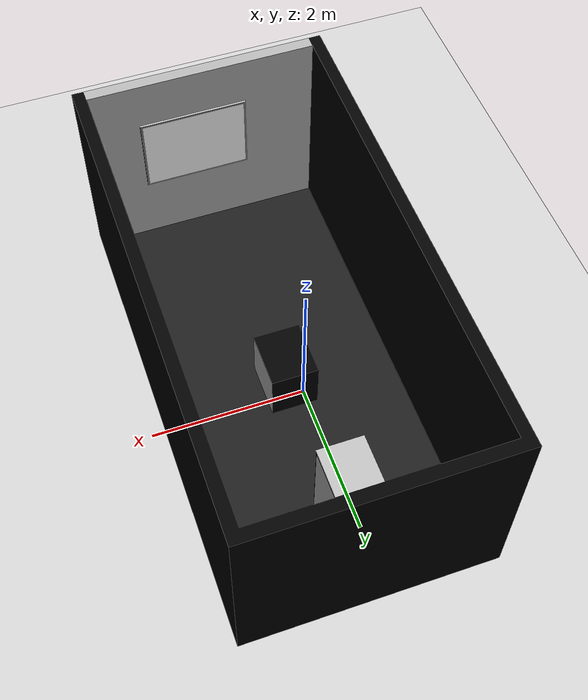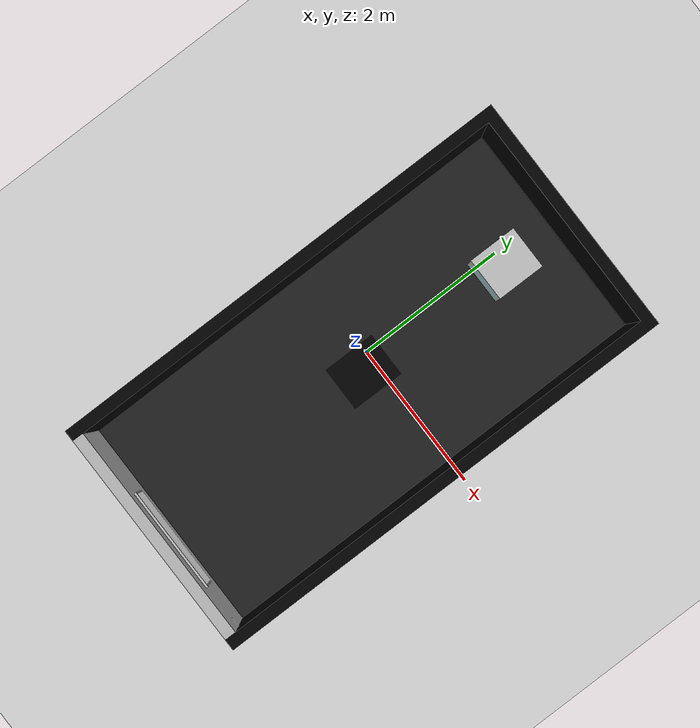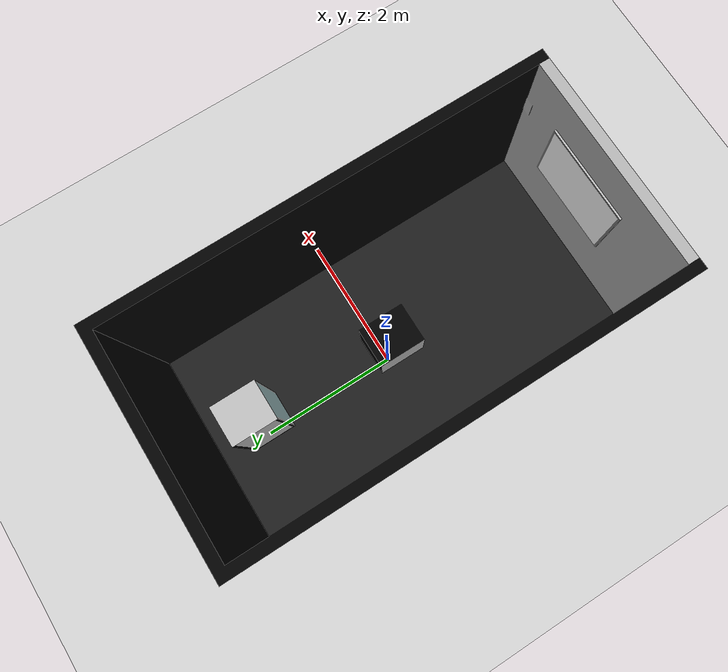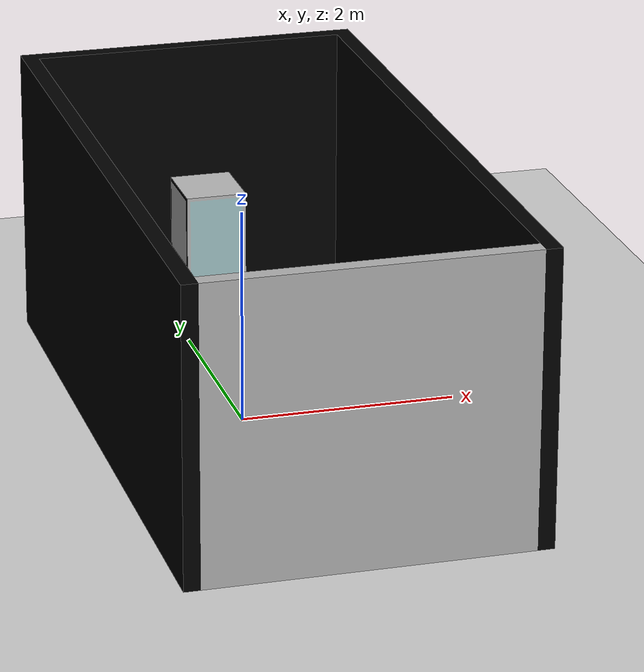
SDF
<sdf version="1.7">
 <world name="default">
  <model name="ground_plane">
   <static>1</static>
   <link name="link">
    <visual name="visual">
     <cast_shadows>0</cast_shadows>
     <geometry><plane><normal>0 0 1</normal><size>100 100</size></plane></geometry>
     <material>
      <script><uri>file://media/materials/scripts/gazebo.material</uri><name>Gazebo/Grey</name></script>
     </material>
    </visual>
   </link>
  </model>
  <gravity>0 0 -9.8</gravity>
  <magnetic_field>6e-06 2.3e-05 -4.2e-05</magnetic_field>
  <atmosphere type="adiabatic"/>
  <physics type="ode">
   <max_step_size>0.001</max_step_size>
   <real_time_factor>1</real_time_factor>
   <real_time_update_rate>1000</real_time_update_rate>
  </physics>
  <scene><ambient>0.4 0.4 0.4 1</ambient><background>0.7 0.7 0.7 1</background><shadows>1</shadows></scene>
  <spherical_coordinates>
   <surface_model>EARTH_WGS84</surface_model>
   <latitude_deg>0</latitude_deg>
   <longitude_deg>0</longitude_deg>
   <elevation>0</elevation>
   <heading_deg>0</heading_deg>
  </spherical_coordinates>
  <model name="Scene7">
   <link name="link_0">
    <inertial>
     <mass>1</mass>
     <inertia>
      <ixx>0.166667</ixx>
      <ixy>0</ixy>
      <ixz>0</ixz>
      <iyy>0.166667</iyy>
      <iyz>0</iyz>
      <izz>0.166667</izz>
     </inertia>
    </inertial>
    <pose>-1e-06 1e-06 0 0 -0 0</pose>
    <visual name="visual">
     <geometry>
      <mesh><uri>/home/dtu1990/ros2_ws/src/ros2_hri/world/Scene2.dae</uri><scale>1 1 1</scale></mesh>
     </geometry>
    </visual>
   </link>
   <static>1</static>
   <pose>1.67592 -3.2137 0 0 -0 0</pose>
  </model>
  <audio><device>default</device></audio>
  <light name="user_point_light_0" type="point">
   <pose>0.146355 1.80923 1 0 -0 0</pose>
   <diffuse>0.5 0.5 0.5 1</diffuse>
   <specular>0.1 0.1 0.1 1</specular>
   <attenuation>
    <range>20</range>
    <constant>0.5</constant>
    <linear>0.01</linear>
    <quadratic>0.001</quadratic>
   </attenuation>
   <cast_shadows>0</cast_shadows>
   <direction>0 0 -1</direction>
   <spot><inner_angle>0</inner_angle><outer_angle>0</outer_angle><falloff>0</falloff></spot>
  </light>
  <light name="user_point_light_1" type="point">
   <pose>0.146044 -1.30898 1 0 -0 0</pose>
   <diffuse>0.5 0.5 0.5 1</diffuse>
   <specular>0.1 0.1 0.1 1</specular>
   <attenuation>
    <range>20</range>
    <constant>0.5</constant>
    <linear>0.01</linear>
    <quadratic>0.001</quadratic>
   </attenuation>
   <cast_shadows>0</cast_shadows>
   <direction>0 0 -1</direction>
   <spot><inner_angle>0</inner_angle><outer_angle>0</outer_angle><falloff>0</falloff></spot>
  </light>
  <light name="user_point_light_2" type="point">
   <pose>-0.438498 -1.58783 1 0 -0 0</pose>
   <diffuse>0.5 0.5 0.5 1</diffuse>
   <specular>0.1 0.1 0.1 1</specular>
   <attenuation>
    <range>20</range>
    <constant>0.5</constant>
    <linear>0.01</linear>
    <quadratic>0.001</quadratic>
   </attenuation>
   <cast_shadows>0</cast_shadows>
   <direction>0 0 -1</direction>
   <spot><inner_angle>0</inner_angle><outer_angle>0</outer_angle><falloff>0</falloff></spot>
  </light>
  <light name="user_point_light_3" type="point">
   <pose>-0.393222 -1.40293 1 0 -0 0</pose>
   <diffuse>0.5 0.5 0.5 1</diffuse>
   <specular>0.1 0.1 0.1 1</specular>
   <attenuation>
    <range>20</range>
    <constant>0.5</constant>
    <linear>0.01</linear>
    <quadratic>0.001</quadratic>
   </attenuation>
   <cast_shadows>0</cast_shadows>
   <direction>0 0 -1</direction>
   <spot><inner_angle>0</inner_angle><outer_angle>0</outer_angle><falloff>0</falloff></spot>
  </light>
 </world>
</sdf>
